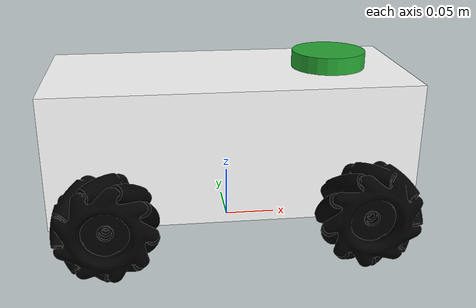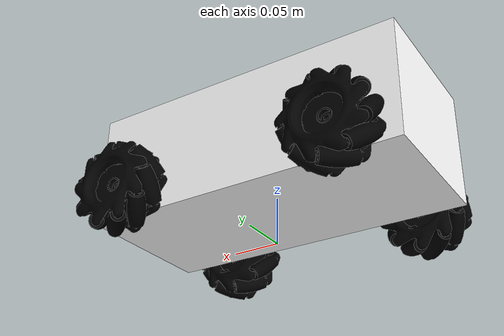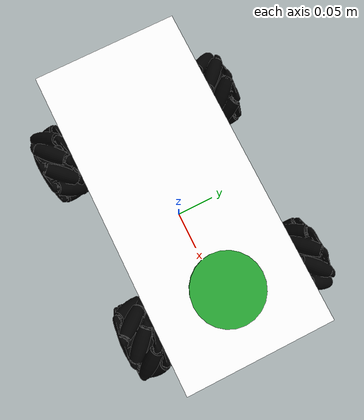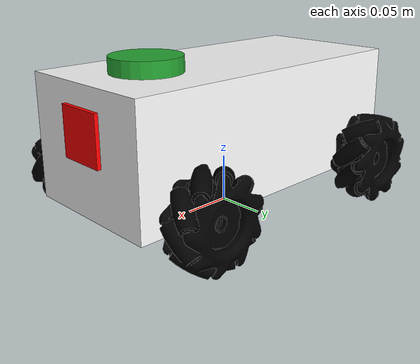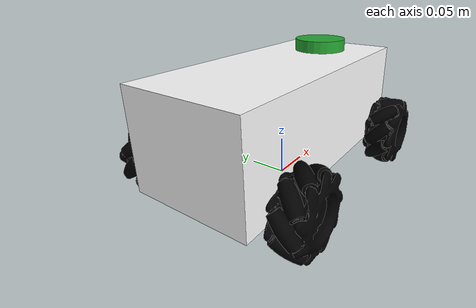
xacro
<?xml version="1.0"?>
<robot name="square_robot" xmlns:xacro="http://www.ros.org/wiki/xacro">
<!-- 小车自定义参数部分 -->
	<!-- xacro自定义变量参数 -->
    <!-- 轮子 宽0.044m 半径0.047m -->
    <xacro:property name="length_wheel" value="0.044" />
    <xacro:property name="radius_wheel" value="0.047" />
	<!-- 左右轮子与车身中心点(0,0,0)的vx轴距离 0.124m y轴距离 0.11m z轴距离 0.048m-->
	<xacro:property name="FL" value="0.117 0.106 -0.0465"/>
    <xacro:property name="FR" value="0.117 -0.106 -0.0465"/>
    <xacro:property name="BL" value="-0.117 0.106 -0.0465"/>
    <xacro:property name="BR" value="-0.117 -0.106 -0.0465"/>
	<!-- 长方体车身  (x方向)长=0.342m (y方向)宽0.16m (z方向)高=0.172-0.08m-->
	<xacro:property name="bodywork_size" value="0.342 0.154 0.125"/>
	<!-- 长方体车身 位置（相对于世界坐标）-->
	<xacro:property name="bodywork_posi" value="0 0 0.0935"/>
    <xacro:property name="PI"           value="3.1415926"/>

    <!-- 均质长方体惯性参数 -->
    <xacro:macro name="box_inertial" params="lenth width high mass">
        <inertial>
            <mass value="${mass}"/>
            <inertia ixx="${mass / 12.0 * (width*width + high*high)}" ixy="0.0"
                     iyy="${mass / 12.0 * (lenth*lenth + high*high)}" iyz="0.0"
                     izz="${mass / 12.0 * (lenth*lenth + width*width)}" ixz="0.0" />
        </inertial>
    </xacro:macro>

    <!-- 均质圆柱体惯性参数 -->
    <xacro:macro name="cylinder_inertial" params="radius high mass">
        <inertial>
            <mass value="${mass}"/>
            <inertia ixx="${mass / 12.0 * radius*radius + mass / 4.0 * high*high}" ixy="0.0"
                     iyy="${mass / 12.0 * radius*radius + mass / 4.0 * high*high}" iyz="0.0"
                     izz="${mass /  2.0 * radius*radius}"                          ixz="0.0" />
        </inertial>
    </xacro:macro>
<!-- 小车自定义参数部分 -->

<!-- 小车整体描述 -->
	<!-- 小车整体坐标部分 -->
    <!-- 用于定义机器人的一个刚体链接,这里会把ucar_02当成父坐标系 -->
    <link name="ucar_02">
    </link>
	<!-- 小车整体坐标部分 -->
	<!-- 车身部分 -->
	<link name="base_link">
   		<visual>
			<geometry>
      				<box size="${bodywork_size}"/>
     		</geometry>
			<material name="white">
				<color rgba="1 1 1 1"/>
			</material>
   		</visual>
		<collision>
			<geometry>
       				<box size="${bodywork_size}"/>
			</geometry>
		</collision>
        <xacro:box_inertial lenth="0.342" width="0.154" high="0.125" mass="8" />
 	</link>
	<!-- 车身部分 -->
	<!-- 轮子部分 -->
	<xacro:macro name="wheel_" params="num model_path">
 	<link name="wheel_${num}">
   		<visual>
     			<geometry>
                    <mesh filename="package://urdf_test/meshes/${model_path}" />
                    <!-- 下面这种写法只会在gazebo加载模型，rviz不会显示 -->
     			</geometry>
   				<material name="black">
					<color rgba="0 0 0 1"/>
				</material>
		</visual>
		<collision>
			<origin rpy="1.5709 0 0"/>
			<geometry>
       				<cylinder length="${length_wheel}" radius="${radius_wheel}"/>
			</geometry>
		</collision>
        <xacro:cylinder_inertial radius="0.047" high="0.044" mass="0.5" />
 	</link>
	</xacro:macro>
	<xacro:wheel_ num="1" model_path="FL_r47_w44.dae"/>
	<xacro:wheel_ num="2" model_path="BL_r47_w44.dae" />
	<xacro:wheel_ num="3" model_path="FR_r47_w44.dae" />
	<xacro:wheel_ num="4" model_path="BR_r47_w44.dae" />
	<!-- 轮子部分 -->
    <!-- IMU部分 -->
    <link name="imu_link">
        <collision>
            <geometry>
                <box size="0.05 0.05 0.05"/>
            </geometry>
        </collision>
        <visual>
            <geometry>
                <box size="0.05 0.05 0.05"/>
            </geometry>
            <material name="green">
                <color rgba="0 1 0 1"/>
            </material>
        </visual>
        <inertial>
            <mass value="1e-2" />
                <inertia ixx="1e-6" ixy="0"
                         iyy="1e-6" ixz="0"
                         izz="1e-6" iyz="0"/>
        </inertial>
    </link>
    <!-- IMU部分 -->
    <!-- 摄像头部分 -->
    <link name="camera_link">
        <collision>
            <geometry>
                <box size="0.05 0.05 0.05"/>
            </geometry>
        </collision>
        <visual>
            <geometry>
                <box size="0.05 0.05 0.05"/>
            </geometry>
            <material name="red">
                <color rgba="1 0 0 1"/>
            </material>
        </visual>
        <inertial>
            <mass value="1e-2" />
            <inertia ixx="1e-6" ixy="0"
                     iyy="1e-6" iyz="0"
                     izz="1e-6" ixz="0"/>
        </inertial>
    </link>
    <!-- 摄像头部分 -->
    <!-- 2D激光雷达部分 -->
    <link name="laser_frame">
        <collision>
            <geometry>
                <cylinder radius="0.0355" length="0.016"/>
            </geometry>
        </collision>
        <visual>
            <geometry>
                <cylinder radius="0.0355" length="0.016"/>
            </geometry>
        </visual>
        <inertial>
            <mass value="1e-2" />
            <inertia ixx="1e-6" ixy="0"
                     iyy="1e-6" iyz="0"
                     izz="1e-6" ixz="0"/>
        </inertial>
    </link>
    <!-- 2D激光雷达部分 -->

    <!-- 底盘关节部分 -->
    <!-- 车身关节部分 -->
	<joint name="base_link_joint" type="fixed">
		<origin xyz="${bodywork_posi}"/>
		<parent link = "ucar_02" />
		<child  link = "base_link" />
	</joint>
    <!-- 车身关节部分 -->
	<!-- 轮子关节连接部分 -->
	<xacro:macro name="wheel_joints" params="num posi axis">
		<joint name="base_to_wheel${num}" type="continuous">
			<origin xyz="${posi}"/>
			<parent link = "base_link"/>
			<child  link = "wheel_${num}"/>
			<!-- 这定义了关节旋转的轴。xyz="0 0 1"意味着关节是沿着z轴旋转的 -->
			<axis   xyz  = "${axis}" />
            <limit  effort = "1" velocity="33.504" />
		</joint>
	</xacro:macro>
	<xacro:wheel_joints num="1" posi="${FL}" axis="0  1 0" />
	<xacro:wheel_joints num="2" posi="${BL}" axis="0  1 0" />
	<xacro:wheel_joints num="3" posi="${FR}" axis="0 -1 0" />
	<xacro:wheel_joints num="4" posi="${BR}" axis="0 -1 0" />
	<!-- 轮子关节连接部分 -->
    <!-- IMU关节部分 -->
    <joint name="imu_joint" type="fixed">
        <parent link = "base_link"/>
        <child  link = "imu_link"/>
    </joint>
    <!-- IMU关节部分 -->
    <!-- 摄像头关节部分 -->
    <joint name="camera_joint" type="fixed">
		<origin xyz="0.15 0.0 0.0165"/>
        <parent link = "base_link"/>
        <child  link = "camera_link"/>
    </joint>
    <!-- 摄像头关节部分 -->
    <!-- 2D激光雷达关节部分 -->
    <joint name="hokuyo_joint" type="fixed">
		<origin xyz="0.1 0.0 0.0705"/>
        <parent link = "base_link"/>
        <child  link = "laser_frame"/>
    </joint>
    <!-- 2D激光雷达关节部分 -->
<!-- 小车整体描述 -->

<!-- GAZEBO相关插件 -->

    <!-- 摄像头部分 -->
    <gazebo reference="camera_link">
        <material>Gazebo/Red</material>
        <sensor type="camera" name="camera1">
            <update_rate>30.0</update_rate>
            <camera name="head">
                <horizontal_fov>2.178718</horizontal_fov>
                <image>
                    <width>640</width>
                    <height>480</height>
                <format>R8G8B8</format>
                </image>
                <clip>
                    <near>0.045</near>
                    <far>100</far>
                </clip>

                <noise>
                    <type>gaussian</type>
                    <mean>0.0</mean>
                    <stddev>0.007</stddev>
                </noise>
            </camera>

            <plugin name="camera_controller" filename="libgazebo_ros_camera.so">
                <alwaysOn>true</alwaysOn>
                <updateRate>30.0</updateRate>
                <cameraName>/</cameraName>
                <imageTopicName>cam</imageTopicName>
                <cameraInfoTopicName>camera_info</cameraInfoTopicName>
                <frameName>camera_link</frameName>
                <hackBaseline>0.07</hackBaseline>
                <distortionK1>0.0</distortionK1>
                <distortionK2>0.0</distortionK2>
                <distortionK3>0.0</distortionK3>
                <distortionT1>0.0</distortionT1>
                <distortionT2>0.0</distortionT2>
            </plugin>
        </sensor>
    </gazebo>
    <!-- 摄像头部分 -->

    <!-- 2D激光雷达的部分 -->
        <gazebo reference="laser_frame">
            <material>Gazebo/Green</material>
            <sensor type="gpu_ray" name="head_hokuyo_sensor">
            <!-- 如果电脑没有gpu请用下面的代替,gpu_ray要比ray稳定且好用 -->
                <pose>0 0 0 0 0 0</pose>
                <!-- 雷达射线可视化 -->
                <visualize>false</visualize>
                <!-- 雷达转360度的频率(单位是hz) -->
                <update_rate>12</update_rate>
                <ray>
                    <scan>
                        <horizontal>
                            <!-- 雷达转360度所发射的射线 -->
                            <samples>750</samples>
                            <!-- 角度分辨率(单位是度) -->
                            <resolution>0.12</resolution>
                            <!-- 雷达测量范围(单位弧度) -->
                            <!-- 正前方向右的范围(单位弧度) -->
                            <min_angle>-3.141592653</min_angle>
                            <!-- 正前方向左的范围(单位弧度) -->
                            <max_angle>3.141592653</max_angle>
                        </horizontal>
                    </scan>
                    <range>
                        <!-- 测量距离范围(单位m) -->
                        <min>0.12</min>
                        <max>16</max>
                        <!-- 精度(单位是度) -->
                        <resolution>0.48</resolution>
                    </range>
                    <noise>
                        <!-- 高斯噪声 -->
                        <type>gaussian</type>
                        <mean>0.0</mean>
                        <stddev>0.01</stddev>
                    </noise>
                </ray>
                <plugin name="gazebo_ros_head_hokuyo_controller" filename="libgazebo_ros_gpu_laser.so">
                <!-- 如果电脑没有gpu请用下面的代替 -->
                    <!-- 发布数据的话题名 -->
                    <topicName>/scan</topicName>
                    <!-- 在tf树所属的坐标框架 -->
                    <frameName>laser_frame</frameName>
                </plugin>

            </sensor>
        </gazebo>
    <!-- 2D激光雷达的部分 -->

    <!-- IMU部分 -->
    <gazebo reference="imu_link">
        <material>Gazebo/Orange</material>
        <gravity>true</gravity>

        <sensor name="imu_sensor" type="imu">
            <always_on>true</always_on>
            <update_rate>100</update_rate>
            <visualize>true</visualize>
            <topic>__default_topic__</topic>

            <plugin filename="libgazebo_ros_imu_sensor.so" name="imu_plugin">
                <topicName>imu</topicName>
                <bodyName>imu_link</bodyName>
                <updateRateHZ>100.0</updateRateHZ>
                <gaussianNoise>0.0</gaussianNoise>
                <xyzOffset>0 0 0</xyzOffset>
                <rpyOffset>0 0 0</rpyOffset>
                <frameName>imu_link</frameName>
            </plugin>
            <pose>0 0 0 0 0 0</pose>
        </sensor>
    </gazebo>
    <!-- IMU部分 -->

    <!-- 小车控制器部分 -->
    <!-- 麦轮控制器 -->
    <gazebo>
        <plugin name="mecanum_controller" filename="libgazebo_ros_planar_move.so">
            <alwaysOn>true</alwaysOn>
            <updateRate>20.0</updateRate>
            <commandTopic>cmd_vel</commandTopic>
            <odometryTopic>odom</odometryTopic>
            <odometryFrame>odom</odometryFrame>
            <leftFrontJoint>base_to_wheel1</leftFrontJoint>
            <rightFrontJoint>base_to_wheel3</rightFrontJoint>
            <leftRearJoint>base_to_wheel2</leftRearJoint>
            <rightRearJoint>base_to_wheel4</rightRearJoint>
            <odometryRate>20.0</odometryRate>
            <broadcastTF>0</broadcastTF>
            <robotBaseFrame>ucar_02</robotBaseFrame>
            <cmdTimeout>-1.0</cmdTimeout>
        </plugin>
    </gazebo>
    <!-- 麦轮控制器 -->
    <!-- 小车控制器部分 -->

<!-- GAZEBO相关插件 -->
</robot>
